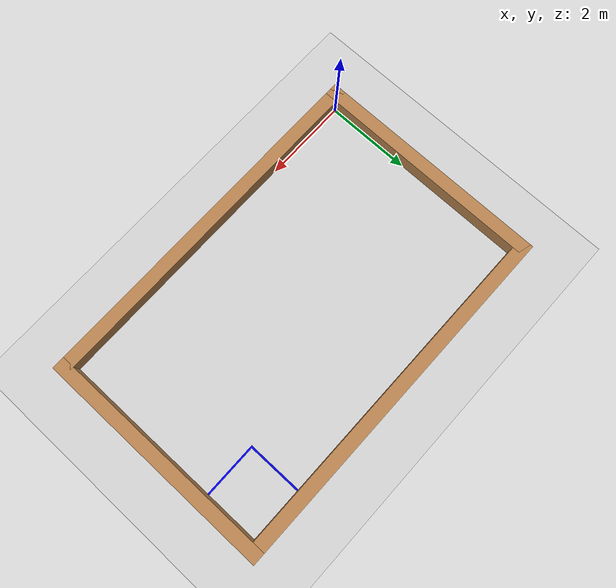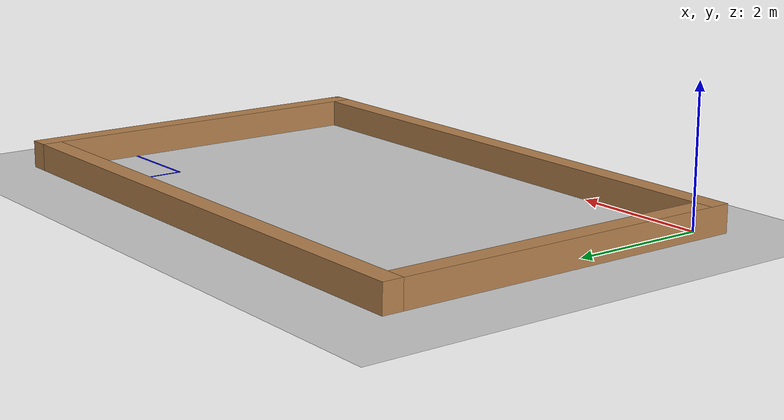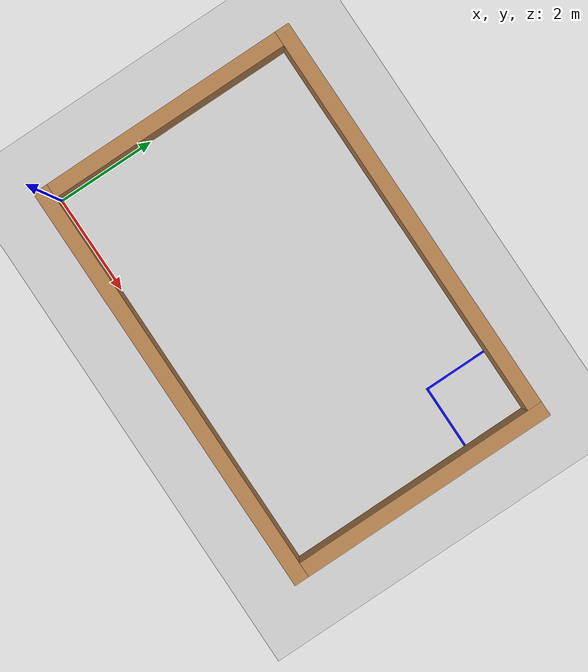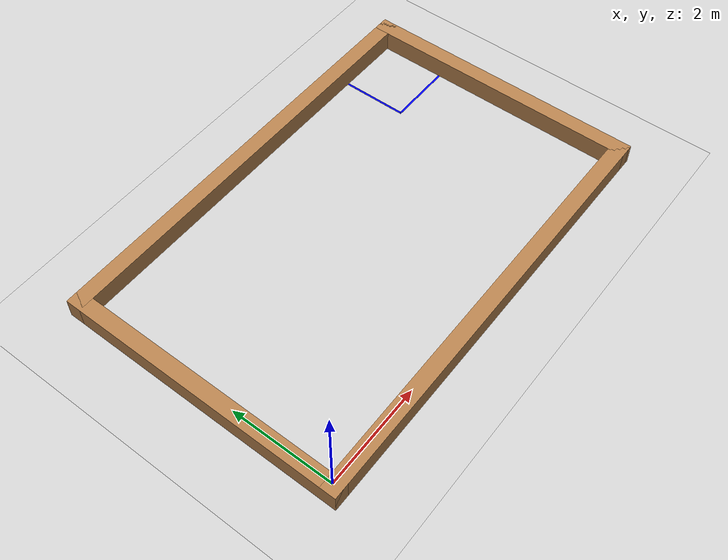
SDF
<sdf version="1.6">
 <world name="default">
  <light name="sun" type="directional">
   <pose>0 0 10 0 -0 0</pose>
   <diffuse>0.8 0.8 0.8 1</diffuse>
   <specular>0.1 0.1 0.1 1</specular>
   <attenuation>
    <range>1000</range>
    <constant>0.9</constant>
    <linear>0.01</linear>
    <quadratic>0.001</quadratic>
   </attenuation>
   <direction>-0.5 0.5 -1</direction>
  </light>
  <model name="ground_plane">
   <static>1</static>
   <link name="link">
    <collision name="collision">
     <geometry><plane><normal>0 0 1</normal><size>100 100</size></plane></geometry>
     <surface><friction><ode><mu>100</mu><mu2>50</mu2></ode></friction></surface>
    </collision>
    <visual name="visual">
     <cast_shadows>0</cast_shadows>
     <geometry><plane><normal>0 0 1</normal><size>100 100</size></plane></geometry>
     <material>
      <script><uri>file://media/materials/scripts/gazebo.material</uri><name>Gazebo/Grey</name></script>
     </material>
    </visual>
   </link>
  </model>
  <gravity>0 0 -9.8</gravity>
  <magnetic_field>6e-06 2.3e-05 -4.2e-05</magnetic_field>
  <atmosphere type="adiabatic"/>
  <physics name="default_physics" default="0" type="ode">
   <max_step_size>0.001</max_step_size>
   <real_time_factor>1</real_time_factor>
   <real_time_update_rate>1000</real_time_update_rate>
  </physics>
  <scene><ambient>0.4 0.4 0.4 1</ambient><background>0.7 0.7 0.7 1</background><shadows>1</shadows></scene>
  <spherical_coordinates>
   <surface_model>EARTH_WGS84</surface_model>
   <latitude_deg>0</latitude_deg>
   <longitude_deg>0</longitude_deg>
   <elevation>0</elevation>
   <heading_deg>0</heading_deg>
  </spherical_coordinates>
  <model name="StartingZone">
   <pose>7.355 4.355 0 0 -0 0</pose>
   <link name="Wall_0">
    <collision name="Wall_0_Collision">
     <geometry><box><size>1.29 0.04 0.001</size></box></geometry>
     <pose>0 0 0.0005 0 -0 0</pose>
    </collision>
    <visual name="Wall_0_Visual">
     <pose>0 0 0.0005 0 -0 0</pose>
     <geometry><box><size>1.29 0.04 0.001</size></box></geometry>
     <material>
      <script><uri>file://media/materials/scripts/gazebo.material</uri><name>Gazebo/Grey</name></script>
      <ambient>0 0 1 1</ambient>
     </material>
    </visual>
    <pose>-0.625 0 0 0 0 -1.5708</pose>
   </link>
   <link name="Wall_1">
    <collision name="Wall_1_Collision">
     <geometry><box><size>1.29 0.04 0.001</size></box></geometry>
     <pose>0 0 0.0005 0 -0 0</pose>
    </collision>
    <visual name="Wall_1_Visual">
     <pose>0 0 0.0005 0 -0 0</pose>
     <geometry><box><size>1.29 0.04 0.001</size></box></geometry>
     <material>
      <script><uri>file://media/materials/scripts/gazebo.material</uri><name>Gazebo/Grey</name></script>
      <ambient>0 0 1 1</ambient>
     </material>
    </visual>
    <pose>0 -0.625 0 0 -0 0</pose>
   </link>
   <static>1</static>
  </model>
  <model name="ICRA_map">
   <pose>4 2.5 0 0 -0 0</pose>
   <link name="Wall_0">
    <collision name="Wall_0_Collision">
     <geometry><box><size>8.6 0.3 0.4</size></box></geometry>
     <pose>0 0 0.2 0 -0 0</pose>
    </collision>
    <visual name="Wall_0_Visual">
     <pose>0 0 0.2 0 -0 0</pose>
     <geometry><box><size>8.6 0.3 0.4</size></box></geometry>
     <material>
      <script><uri>file://media/materials/scripts/gazebo.material</uri><name>Gazebo/Wood</name></script>
      <ambient>0.996078 0.47451 0.0196078 1</ambient>
     </material>
    </visual>
    <pose>0 -2.65 0 0 -0 0</pose>
   </link>
   <link name="Wall_1">
    <collision name="Wall_1_Collision">
     <geometry><box><size>5.6 0.3 0.4</size></box></geometry>
     <pose>0 0 0.2 0 -0 0</pose>
    </collision>
    <visual name="Wall_1_Visual">
     <pose>0 0 0.2 0 -0 0</pose>
     <geometry><box><size>5.6 0.3 0.4</size></box></geometry>
     <material>
      <script><uri>file://media/materials/scripts/gazebo.material</uri><name>Gazebo/Wood</name></script>
      <ambient>0.996078 0.47451 0.0196078 1</ambient>
     </material>
    </visual>
    <pose>4.15 0 0 0 -0 1.5708</pose>
   </link>
   <link name="Wall_2">
    <collision name="Wall_2_Collision">
     <geometry><box><size>8.6 0.3 0.4</size></box></geometry>
     <pose>0 0 0.2 0 -0 0</pose>
    </collision>
    <visual name="Wall_2_Visual">
     <pose>0 0 0.2 0 -0 0</pose>
     <geometry><box><size>8.6 0.3 0.4</size></box></geometry>
     <material>
      <script><uri>file://media/materials/scripts/gazebo.material</uri><name>Gazebo/Wood</name></script>
      <ambient>0.996078 0.47451 0.0196078 1</ambient>
     </material>
    </visual>
    <pose>0 2.65 0 0 -0 3.14159</pose>
   </link>
   <link name="Wall_3">
    <collision name="Wall_3_Collision">
     <geometry><box><size>5.6 0.3 0.4</size></box></geometry>
     <pose>0 0 0.2 0 -0 0</pose>
    </collision>
    <visual name="Wall_3_Visual">
     <pose>0 0 0.2 0 -0 0</pose>
     <geometry><box><size>5.6 0.3 0.4</size></box></geometry>
     <material>
      <script><uri>file://media/materials/scripts/gazebo.material</uri><name>Gazebo/Wood</name></script>
      <ambient>0.996078 0.47451 0.0196078 1</ambient>
     </material>
    </visual>
    <pose>-4.15 0 0 0 0 -1.5708</pose>
   </link>
   <static>1</static>
  </model>
  <audio><device>default</device></audio>
 </world>
</sdf>
